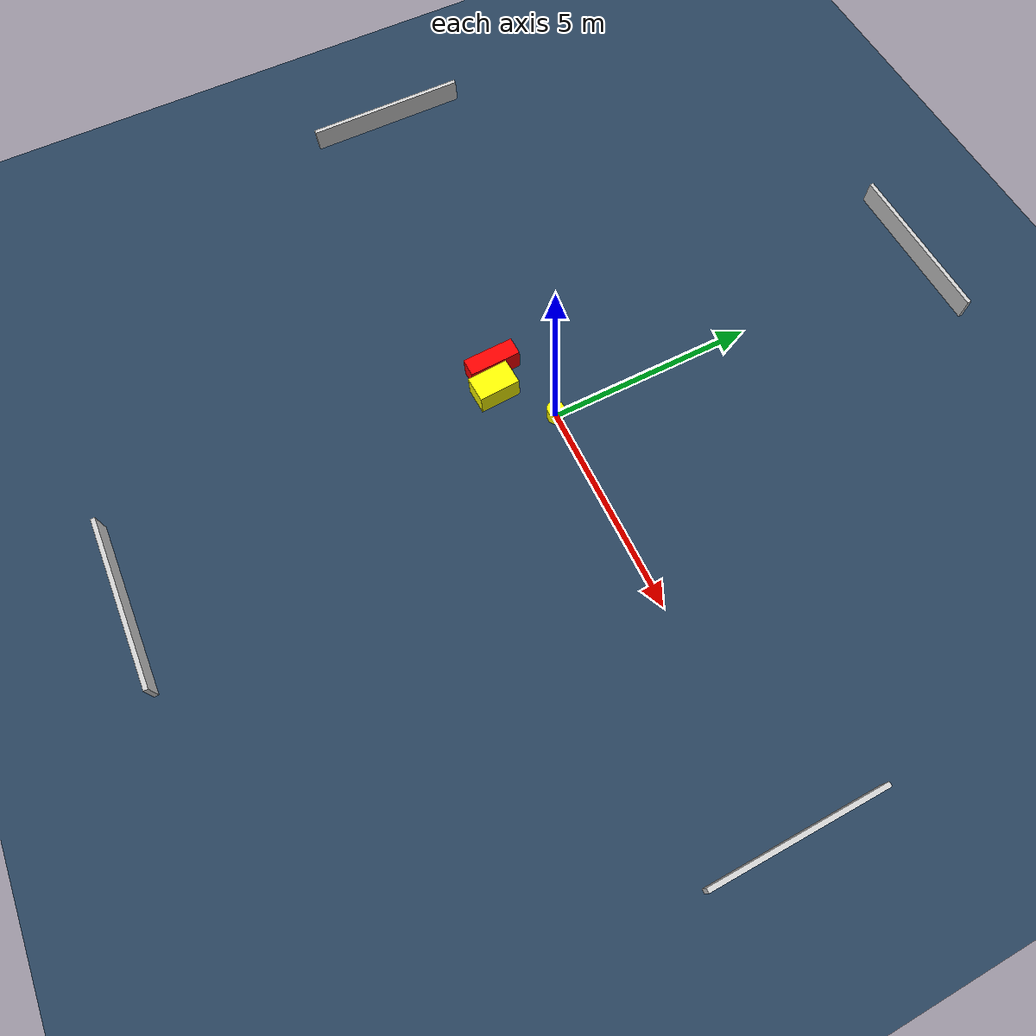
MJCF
<?xml version="1.0" ?>
<mujoco model="generated_environment">
  <option timestep="0.01" integrator="RK4" cone="elliptic"/>
  <default>
    <geom density="1"/>
  </default>
  <asset>
    <texture builtin="gradient" height="3072" name="skybox" rgb1="0.3 0.5 0.7" rgb2="0 0 0" type="skybox" width="512"/>
    <texture builtin="checker" height="300" name="groundplane" rgb1="0.2 0.3 0.4" rgb2="0.1 0.2 0.3" type="2d" width="300"/>
    <material name="groundplane" reflectance="0.2" texrepeat="5 5" texture="groundplane"/>
  </asset>
  <worldbody>
    <light dir="0 0 -1" directional="true" pos="0 0 1.5"/>
    <geom condim="3" friction="0.5 0.005 0.001" material="groundplane" name="floor" pos="0 0 0" size="0 0 0.05" type="plane"/>
    <body name="walls">
      <geom name="wall_1" condim="4" pos="-10.0 0.0 0.3" rgba="0.800000011920929 0.800000011920929 0.800000011920929 1.0" size="0.05 2.0 0.3" type="box"/>
      <geom name="wall_2" condim="4" pos="10.0 0.0 0.3" rgba="0.800000011920929 0.800000011920929 0.800000011920929 1.0" size="0.05 2.0 0.3" type="box"/>
      <geom name="wall_3" condim="4" pos="0.0 -10.0 0.3" rgba="0.800000011920929 0.800000011920929 0.800000011920929 1.0" size="2.0 0.05 0.3" type="box"/>
      <geom name="wall_4" condim="4" pos="0.0 10.0 0.3" rgba="0.800000011920929 0.800000011920929 0.800000011920929 1.0" size="2.0 0.05 0.3" type="box"/>
    </body>
    <body name="robot">
      <joint name="joint_x" type="slide" pos="0 0 0" axis="1 0 0"/>
      <joint name="joint_y" type="slide" pos="0 0 0" axis="0 1 0"/>
      <geom name="robot" type="cylinder" pos="0.0 0.0 0.2" size="0.2 0.2 0.0" mass="5.0" friction="1.0 0.005 0.0001" condim="4" rgba="1.0 1.0 0.0 1.0"/>
    </body>
    <body name="obstacle_1_movable">
      <geom name="obstacle_1_movable" condim="4" pos="-1.1897389741280078 -0.9799447125641787 0.3" euler="0 0 93.44993445089688" friction="0.0 0.005 0.001" rgba="1.0 1.0 0.0 1.0" size="0.49088905465385024 0.3115266650493623 0.3" type="box" mass="0.1"/>
      <joint type="free"/>
    </body>
    <body name="obstacle_2_static">
      <geom name="obstacle_2_static" condim="4" pos="-1.7702829581339814 -0.7576986819355332 0.3" euler="0 0 271.9097066041827" friction="0.0 0.005 0.001" rgba="1.0 0.0 0.0 1.0" size="0.6141296518238271 0.21427051578192574 0.3" type="box"/>
    </body>
  </worldbody>
  <actuator>
    <motor name="actuator_x" joint="joint_x" gear="1" ctrlrange="-1 1"/>
    <motor name="actuator_y" joint="joint_y" gear="1" ctrlrange="-1 1"/>
  </actuator>
</mujoco>
